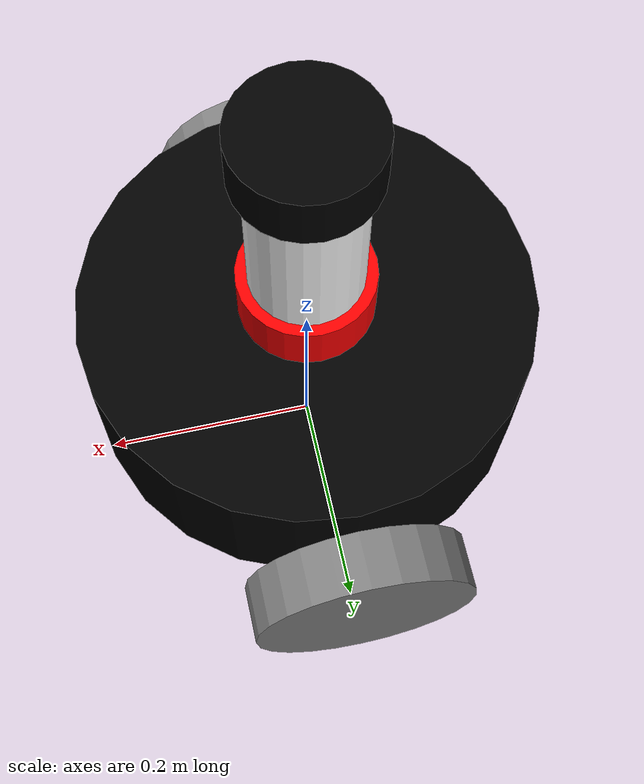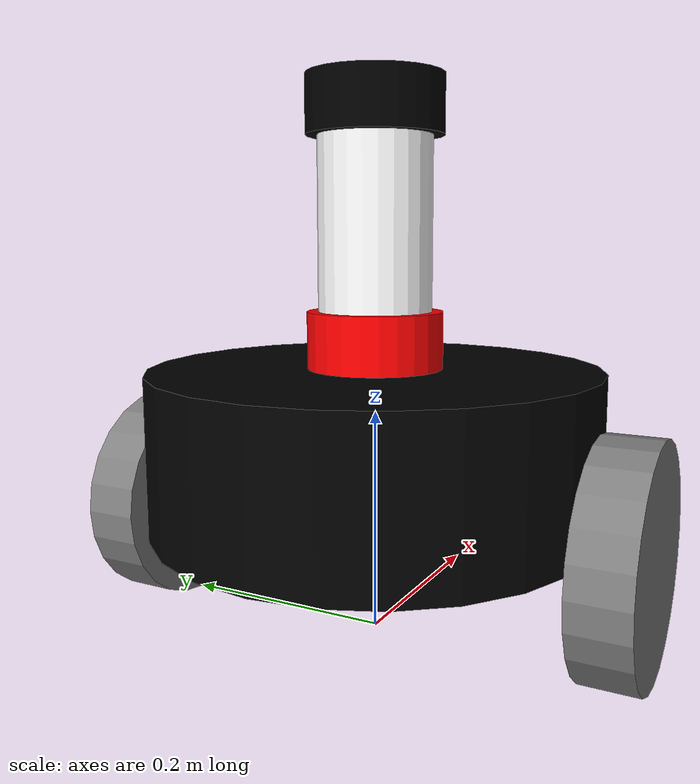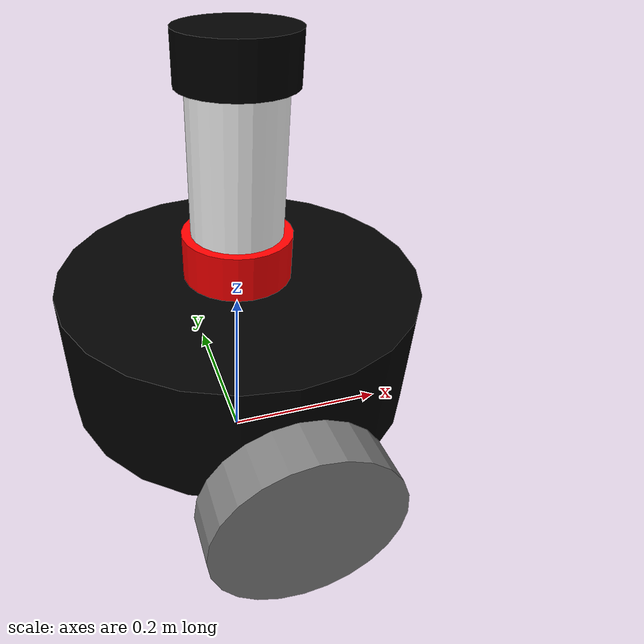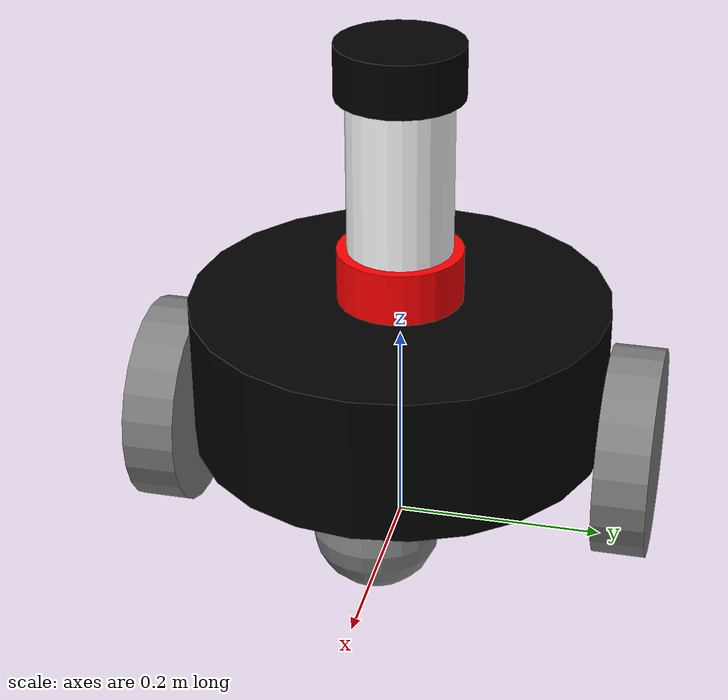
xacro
<?xml version="1.0"?>
<robot name="explorer_robot" xmlns:xacro="http://www.ros.org/wiki/xacro">

    <material name="black">
        <color rgba="0 0 0 1" />
    </material>

    <material name="white">
        <color rgba="1 1 1 1"/>
    </material>

    <material name="grey">
        <color rgba="0.5 0.5 0.5 1" />
    </material>

    <material name="red">
        <color rgba="1 0 0 1" />
    </material>

    <link name="base_footprint" />

    <link name="base_link">
        <visual>
            <geometry>
                <cylinder radius="0.2" length="0.14"/>
            </geometry>
            <origin xyz="0 0 0.07" rpy="0 0 0" />
            <material name="black" />
        </visual>
        <inertia>
            <origin xyz="0 0 0.07" rpy="0 0 0" />
            <mass value="1.0" />
            <inertia ixx="0.001" ixy="0.0" ixz="0.0" iyy="0.001" iyz="0.0" izz="0.001" />
        </inertia>
        <collision>
            <geometry>
                <cylinder radius="0.2" length="0.14"/>
            </geometry>
            <origin xyz="0 0 0.07" rpy="0 0 0" />
        </collision>
    </link>

    <link name="right_wheel_link">
        <visual>
            <geometry>
                <cylinder radius="0.1" length="0.05" />
            </geometry>
            <origin xyz="0.15 0 0" rpy="${pi / 2.0} 0 0" />
            <material name="grey" />
        </visual>
        <inertia>
            <origin xyz="0.15 0 0" rpy="${pi / 2.0} 0 0" />
            <mass value="0.5" />
            <inertia ixx="0.0005" ixy="0.0" ixz="0.0" iyy="0.0005" iyz="0.0" izz="0.0005" />
        </inertia>
        <collision>
            <geometry>
                <cylinder radius="0.1" length="0.05"/>
            </geometry>
            <origin xyz="0.15 0 0" rpy="${pi / 2.0} 0 0" />
        </collision>
    </link>

    <link name="left_wheel_link">
        <visual>
            <geometry>
                <cylinder radius="0.1" length="0.05" />
            </geometry>
            <origin xyz="0.15 0 0" rpy="${pi / 2.0} 0 0" />
            <material name="grey" />
        </visual>
        <inertia>
            <origin xyz="0.15 0 0" rpy="${pi / 2.0} 0 0" />
            <mass value="0.5" />
            <inertia ixx="0.0005" ixy="0.0" ixz="0.0" iyy="0.0005" iyz="0.0" izz="0.0005" />
        </inertia>
        <collision>
            <geometry>
                <cylinder radius="0.1" length="0.05"/>
            </geometry>
            <origin xyz="0.15 0 0" rpy="${pi / 2.0} 0 0" />
        </collision>
    </link>

    <link name="caster_wheel_link">
        <visual>
            <geometry>
                <sphere radius="0.06" />
            </geometry>
            <origin xyz="0 0 0" rpy="0 0 0" />
            <material name="grey" />
        </visual>
        <inertia>
            <origin xyz="0 0 0" rpy="0 0 0" />
            <mass value="0.2" />
            <inertia ixx="0.0001" ixy="0.0" ixz="0.0" iyy="0.0001" iyz="0.0" izz="0.0001" />
        </inertia>
        <collision>
            <geometry>
                <sphere radius="0.06"/>
            </geometry>
            <origin xyz="0 0 0" rpy="0 0 0" />
        </collision>
    </link>

    <link name="turret_link">
        <visual>
            <geometry>
                <cylinder radius="0.05" length="0.2"/>
            </geometry>
            <origin xyz="0 0 0.1" rpy="0 0 0"/>
            <material name="white"/>
        </visual>
        <inertia>
            <origin xyz="0 0 0.1" rpy="0 0 0" />
            <mass value="0.3" />
            <inertia ixx="0.0001" ixy="0.0" ixz="0.0" iyy="0.0001" iyz="0.0" izz="0.0001" />
        </inertia>
        <collision>
            <geometry>
                <cylinder radius="0.05" length="0.2"/>
            </geometry>
            <origin xyz="0 0 0.1" rpy="0 0 0" />
        </collision>
    </link>

    <link name="lidar_sensor">
        <visual>
            <geometry>
                <cylinder radius="0.06" length="0.05"/>
            </geometry>
            <origin xyz="0 0 0.1" rpy="0 0 0"/>
            <material name="red"/>
        </visual>
        <inertia>
            <origin xyz="0 0 0.1" rpy="0 0 0" />
            <mass value="0.2" />
            <inertia ixx="0.00005" ixy="0.0" ixz="0.0" iyy="0.00005" iyz="0.0" izz="0.00005" />
        </inertia>
        <collision>
            <geometry>
                <cylinder radius="0.06" length="0.05"/>
            </geometry>
            <origin xyz="0 0 0.1" rpy="0 0 0" />
        </collision>
    </link>

    <link name="turret_top_link">
        <visual>
            <geometry>
                <cylinder radius="0.06" length="0.05"/>
            </geometry>
            <origin xyz="0 0 0.05" rpy="0 0 0"/>
            <material name="black"/>
        </visual>
        <inertia>
            <origin xyz="0 0 0.05" rpy="0 0 0" />
            <mass value="0.2" />
            <inertia ixx="0.00005" ixy="0.0" ixz="0.0" iyy="0.00005" iyz="0.0" izz="0.00005" />
        </inertia>
        <collision>
            <geometry>
                <cylinder radius="0.06" length="0.05"/>
            </geometry>
            <origin xyz="0 0 0.05" rpy="0 0 0" />
        </collision>
    </link>

    <joint name="base_joint" type="fixed">
        <parent link="base_footprint" />
        <child link="base_link" />
        <origin xyz="0 0 0.1" rpy="0 0 0" />
    </joint>

    <joint name="base_right_wheel_joint" type="continuous">
        <parent link="base_link" />
        <child link="right_wheel_link" />
        <origin xyz="-0.15 -0.225 0" rpy="0 0 0" />
        <axis xyz="0 1 0" />
    </joint>

    <joint name="base_left_wheel_joint" type="continuous">
        <parent link="base_link" />
        <child link="left_wheel_link" />
        <origin xyz="-0.15 0.225 0" rpy="0 0 0" />
        <axis xyz="0 1 0" />
    </joint>

    <joint name="base_caster_wheel_joint" type="fixed">
        <parent link="base_link" />
        <child link="caster_wheel_link" />
        <origin xyz="0.1 0 -0.05" rpy="0 0 0" />
    </joint>

    <joint name="base_turret_joint" type="fixed">
        <parent link="base_link"/>
        <child link="turret_link"/>
        <origin xyz="0 0 0.14" rpy="0 0 0"/>
    </joint>

    <joint name="turret_bottom_joint" type="fixed">
        <parent link="turret_link"/>
        <child link="lidar_sensor"/>
        <origin xyz="0 0 -0.075" rpy="0 0 0"/>
    </joint>

    <joint name="turret_top_joint" type="fixed">
        <parent link="turret_link"/>
        <child link="turret_top_link"/>
        <origin xyz="0 0 0.175" rpy="0 0 0"/>
    </joint>

</robot>
